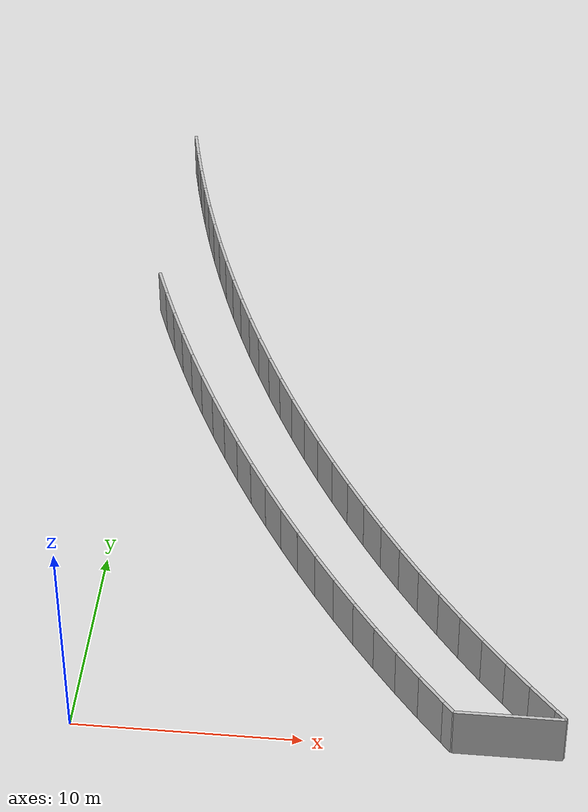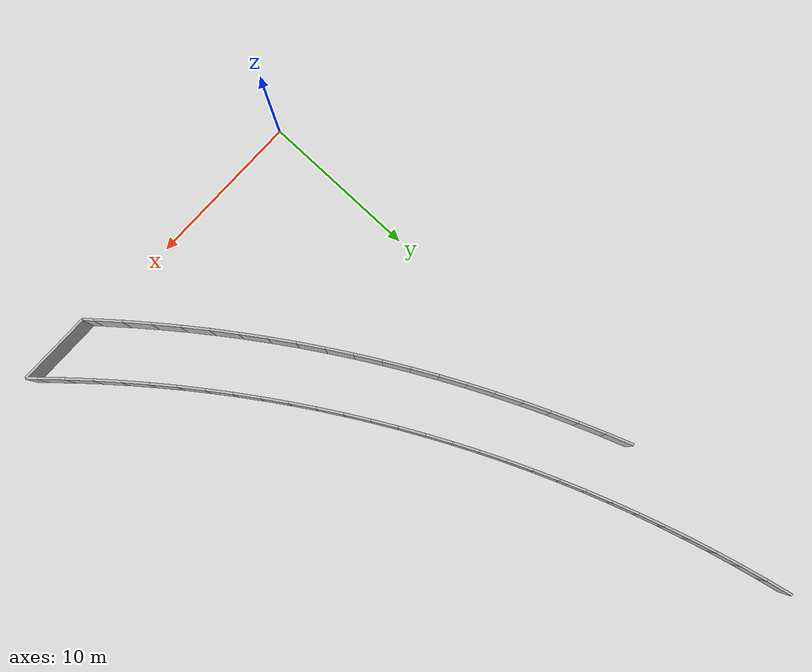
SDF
<?xml version="1.0" ?>
<sdf version="1.6">
  <model name="sps_0600">
    <pose frame="">0 0 0 0 -0 0</pose>
    <static>1</static>
    <self_collide>0</self_collide>
    <allow_auto_disable>0</allow_auto_disable>
    <link name="Wall1586">
      <kinematic>0</kinematic>
      <gravity>1</gravity>
      <self_collide>0</self_collide>
      <collision name="collision">
        <geometry>
          <box>
            <size>0.649497 0.15 2.5</size>
          </box>
        </geometry>
        <pose frame="">0 0 0 0 -0 0</pose>
      </collision>
      <visual name="visual">
        <geometry>
          <box>
            <size>0.649497 0.15 2.5</size>
          </box>
        </geometry>
        <pose frame="">0 0 0 0 -0 0</pose>
        <cast_shadows>1</cast_shadows>
        <transparency>0.0</transparency>
      </visual>
      <pose frame="">16.0914 0.245552 1.25 0 -0 2.28422</pose>
    </link>
    <link name="Wall1587">
      <kinematic>0</kinematic>
      <gravity>1</gravity>
      <self_collide>0</self_collide>
      <collision name="collision">
        <geometry>
          <box>
            <size>1.70127 0.15 2.5</size>
          </box>
        </geometry>
        <pose frame="">0 0 0 0 -0 0</pose>
      </collision>
      <visual name="visual">
        <geometry>
          <box>
            <size>1.70127 0.15 2.5</size>
          </box>
        </geometry>
        <pose frame="">0 0 0 0 -0 0</pose>
        <cast_shadows>1</cast_shadows>
        <transparency>0.0</transparency>
      </visual>
      <pose frame="">15.3346 1.14479 1.25 0 -0 2.26515</pose>
    </link>
    <link name="Wall1588">
      <kinematic>0</kinematic>
      <gravity>1</gravity>
      <self_collide>0</self_collide>
      <collision name="collision">
        <geometry>
          <box>
            <size>1.70131 0.15 2.5</size>
          </box>
        </geometry>
        <pose frame="">0 0 0 0 -0 0</pose>
      </collision>
      <visual name="visual">
        <geometry>
          <box>
            <size>1.70131 0.15 2.5</size>
          </box>
        </geometry>
        <pose frame="">0 0 0 0 -0 0</pose>
        <cast_shadows>1</cast_shadows>
        <transparency>0.0</transparency>
      </visual>
      <pose frame="">14.2585 2.46248 1.25 0 -0 2.246</pose>
    </link>
    <link name="Wall1589">
      <kinematic>0</kinematic>
      <gravity>1</gravity>
      <self_collide>0</self_collide>
      <collision name="collision">
        <geometry>
          <box>
            <size>1.7014 0.15 2.5</size>
          </box>
        </geometry>
        <pose frame="">0 0 0 0 -0 0</pose>
      </collision>
      <visual name="visual">
        <geometry>
          <box>
            <size>1.7014 0.15 2.5</size>
          </box>
        </geometry>
        <pose frame="">0 0 0 0 -0 0</pose>
        <cast_shadows>1</cast_shadows>
        <transparency>0.0</transparency>
      </visual>
      <pose frame="">13.208 3.80067 1.25 0 -0 2.22667</pose>
    </link>
    <link name="Wall1590">
      <kinematic>0</kinematic>
      <gravity>1</gravity>
      <self_collide>0</self_collide>
      <collision name="collision">
        <geometry>
          <box>
            <size>1.70123 0.15 2.5</size>
          </box>
        </geometry>
        <pose frame="">0 0 0 0 -0 0</pose>
      </collision>
      <visual name="visual">
        <geometry>
          <box>
            <size>1.70123 0.15 2.5</size>
          </box>
        </geometry>
        <pose frame="">0 0 0 0 -0 0</pose>
        <cast_shadows>1</cast_shadows>
        <transparency>0.0</transparency>
      </visual>
      <pose frame="">12.1834 5.15877 1.25 0 -0 2.2076</pose>
    </link>
    <link name="Wall1591">
      <kinematic>0</kinematic>
      <gravity>1</gravity>
      <self_collide>0</self_collide>
      <collision name="collision">
        <geometry>
          <box>
            <size>1.70119 0.15 2.5</size>
          </box>
        </geometry>
        <pose frame="">0 0 0 0 -0 0</pose>
      </collision>
      <visual name="visual">
        <geometry>
          <box>
            <size>1.70119 0.15 2.5</size>
          </box>
        </geometry>
        <pose frame="">0 0 0 0 -0 0</pose>
        <cast_shadows>1</cast_shadows>
        <transparency>0.0</transparency>
      </visual>
      <pose frame="">11.1851 6.53618 1.25 0 -0 2.1883</pose>
    </link>
    <link name="Wall1592">
      <kinematic>0</kinematic>
      <gravity>1</gravity>
      <self_collide>0</self_collide>
      <collision name="collision">
        <geometry>
          <box>
            <size>1.70131 0.15 2.5</size>
          </box>
        </geometry>
        <pose frame="">0 0 0 0 -0 0</pose>
      </collision>
      <visual name="visual">
        <geometry>
          <box>
            <size>1.70131 0.15 2.5</size>
          </box>
        </geometry>
        <pose frame="">0 0 0 0 -0 0</pose>
        <cast_shadows>1</cast_shadows>
        <transparency>0.0</transparency>
      </visual>
      <pose frame="">10.2136 7.9326 1.25 0 -0 2.16906</pose>
    </link>
    <link name="Wall1593">
      <kinematic>0</kinematic>
      <gravity>1</gravity>
      <self_collide>0</self_collide>
      <collision name="collision">
        <geometry>
          <box>
            <size>1.70126 0.15 2.5</size>
          </box>
        </geometry>
        <pose frame="">0 0 0 0 -0 0</pose>
      </collision>
      <visual name="visual">
        <geometry>
          <box>
            <size>1.70126 0.15 2.5</size>
          </box>
        </geometry>
        <pose frame="">0 0 0 0 -0 0</pose>
        <cast_shadows>1</cast_shadows>
        <transparency>0.0</transparency>
      </visual>
      <pose frame="">9.26885 9.3474 1.25 0 -0 2.15001</pose>
    </link>
    <link name="Wall1594">
      <kinematic>0</kinematic>
      <gravity>1</gravity>
      <self_collide>0</self_collide>
      <collision name="collision">
        <geometry>
          <box>
            <size>1.70135 0.15 2.5</size>
          </box>
        </geometry>
        <pose frame="">0 0 0 0 -0 0</pose>
      </collision>
      <visual name="visual">
        <geometry>
          <box>
            <size>1.70135 0.15 2.5</size>
          </box>
        </geometry>
        <pose frame="">0 0 0 0 -0 0</pose>
        <cast_shadows>1</cast_shadows>
        <transparency>0.0</transparency>
      </visual>
      <pose frame="">8.35146 10.7801 1.25 0 -0 2.13068</pose>
    </link>
    <link name="Wall1595">
      <kinematic>0</kinematic>
      <gravity>1</gravity>
      <self_collide>0</self_collide>
      <collision name="collision">
        <geometry>
          <box>
            <size>1.70138 0.15 2.5</size>
          </box>
        </geometry>
        <pose frame="">0 0 0 0 -0 0</pose>
      </collision>
      <visual name="visual">
        <geometry>
          <box>
            <size>1.70138 0.15 2.5</size>
          </box>
        </geometry>
        <pose frame="">0 0 0 0 -0 0</pose>
        <cast_shadows>1</cast_shadows>
        <transparency>0.0</transparency>
      </visual>
      <pose frame="">7.46175 12.2302 1.25 0 -0 2.11156</pose>
    </link>
    <link name="Wall1596">
      <kinematic>0</kinematic>
      <gravity>1</gravity>
      <self_collide>0</self_collide>
      <collision name="collision">
        <geometry>
          <box>
            <size>1.70138 0.15 2.5</size>
          </box>
        </geometry>
        <pose frame="">0 0 0 0 -0 0</pose>
      </collision>
      <visual name="visual">
        <geometry>
          <box>
            <size>1.70138 0.15 2.5</size>
          </box>
        </geometry>
        <pose frame="">0 0 0 0 -0 0</pose>
        <cast_shadows>1</cast_shadows>
        <transparency>0.0</transparency>
      </visual>
      <pose frame="">6.60003 13.6971 1.25 0 -0 2.0923</pose>
    </link>
    <link name="Wall1597">
      <kinematic>0</kinematic>
      <gravity>1</gravity>
      <self_collide>0</self_collide>
      <collision name="collision">
        <geometry>
          <box>
            <size>1.70117 0.15 2.5</size>
          </box>
        </geometry>
        <pose frame="">0 0 0 0 -0 0</pose>
      </collision>
      <visual name="visual">
        <geometry>
          <box>
            <size>1.70117 0.15 2.5</size>
          </box>
        </geometry>
        <pose frame="">0 0 0 0 -0 0</pose>
        <cast_shadows>1</cast_shadows>
        <transparency>0.0</transparency>
      </visual>
      <pose frame="">5.76665 15.1802 1.25 0 -0 2.07319</pose>
    </link>
    <link name="Wall1598">
      <kinematic>0</kinematic>
      <gravity>1</gravity>
      <self_collide>0</self_collide>
      <collision name="collision">
        <geometry>
          <box>
            <size>1.70126 0.15 2.5</size>
          </box>
        </geometry>
        <pose frame="">0 0 0 0 -0 0</pose>
      </collision>
      <visual name="visual">
        <geometry>
          <box>
            <size>1.70126 0.15 2.5</size>
          </box>
        </geometry>
        <pose frame="">0 0 0 0 -0 0</pose>
        <cast_shadows>1</cast_shadows>
        <transparency>0.0</transparency>
      </visual>
      <pose frame="">4.96197 16.679 1.25 0 -0 2.05386</pose>
    </link>
    <link name="Wall1599">
      <kinematic>0</kinematic>
      <gravity>1</gravity>
      <self_collide>0</self_collide>
      <collision name="collision">
        <geometry>
          <box>
            <size>1.70148 0.15 2.5</size>
          </box>
        </geometry>
        <pose frame="">0 0 0 0 -0 0</pose>
      </collision>
      <visual name="visual">
        <geometry>
          <box>
            <size>1.70148 0.15 2.5</size>
          </box>
        </geometry>
        <pose frame="">0 0 0 0 -0 0</pose>
        <cast_shadows>1</cast_shadows>
        <transparency>0.0</transparency>
      </visual>
      <pose frame="">4.18615 18.1931 1.25 0 -0 2.03476</pose>
    </link>
    <link name="Wall1600">
      <kinematic>0</kinematic>
      <gravity>1</gravity>
      <self_collide>0</self_collide>
      <collision name="collision">
        <geometry>
          <box>
            <size>1.70127 0.15 2.5</size>
          </box>
        </geometry>
        <pose frame="">0 0 0 0 -0 0</pose>
      </collision>
      <visual name="visual">
        <geometry>
          <box>
            <size>1.70127 0.15 2.5</size>
          </box>
        </geometry>
        <pose frame="">0 0 0 0 -0 0</pose>
        <cast_shadows>1</cast_shadows>
        <transparency>0.0</transparency>
      </visual>
      <pose frame="">3.43954 19.7218 1.25 0 -0 2.01546</pose>
    </link>
    <link name="Wall1601">
      <kinematic>0</kinematic>
      <gravity>1</gravity>
      <self_collide>0</self_collide>
      <collision name="collision">
        <geometry>
          <box>
            <size>1.70138 0.15 2.5</size>
          </box>
        </geometry>
        <pose frame="">0 0 0 0 -0 0</pose>
      </collision>
      <visual name="visual">
        <geometry>
          <box>
            <size>1.70138 0.15 2.5</size>
          </box>
        </geometry>
        <pose frame="">0 0 0 0 -0 0</pose>
        <cast_shadows>1</cast_shadows>
        <transparency>0.0</transparency>
      </visual>
      <pose frame="">2.72243 21.2645 1.25 0 -0 1.99636</pose>
    </link>
    <link name="Wall1602">
      <kinematic>0</kinematic>
      <gravity>1</gravity>
      <self_collide>0</self_collide>
      <collision name="collision">
        <geometry>
          <box>
            <size>1.70125 0.15 2.5</size>
          </box>
        </geometry>
        <pose frame="">0 0 0 0 -0 0</pose>
      </collision>
      <visual name="visual">
        <geometry>
          <box>
            <size>1.70125 0.15 2.5</size>
          </box>
        </geometry>
        <pose frame="">0 0 0 0 -0 0</pose>
        <cast_shadows>1</cast_shadows>
        <transparency>0.0</transparency>
      </visual>
      <pose frame="">2.03506 22.8207 1.25 0 -0 1.9771</pose>
    </link>
    <link name="Wall1603">
      <kinematic>0</kinematic>
      <gravity>1</gravity>
      <self_collide>0</self_collide>
      <collision name="collision">
        <geometry>
          <box>
            <size>1.70114 0.15 2.5</size>
          </box>
        </geometry>
        <pose frame="">0 0 0 0 -0 0</pose>
      </collision>
      <visual name="visual">
        <geometry>
          <box>
            <size>1.70114 0.15 2.5</size>
          </box>
        </geometry>
        <pose frame="">0 0 0 0 -0 0</pose>
        <cast_shadows>1</cast_shadows>
        <transparency>0.0</transparency>
      </visual>
      <pose frame="">1.37777 24.3897 1.25 0 -0 1.95791</pose>
    </link>
    <link name="Wall1604">
      <kinematic>0</kinematic>
      <gravity>1</gravity>
      <self_collide>0</self_collide>
      <collision name="collision">
        <geometry>
          <box>
            <size>1.70123 0.15 2.5</size>
          </box>
        </geometry>
        <pose frame="">0 0 0 0 -0 0</pose>
      </collision>
      <visual name="visual">
        <geometry>
          <box>
            <size>1.70123 0.15 2.5</size>
          </box>
        </geometry>
        <pose frame="">0 0 0 0 -0 0</pose>
        <cast_shadows>1</cast_shadows>
        <transparency>0.0</transparency>
      </visual>
      <pose frame="">0.750663 25.971 1.25 0 -0 1.93878</pose>
    </link>
    <link name="Wall1605">
      <kinematic>0</kinematic>
      <gravity>1</gravity>
      <self_collide>0</self_collide>
      <collision name="collision">
        <geometry>
          <box>
            <size>1.70125 0.15 2.5</size>
          </box>
        </geometry>
        <pose frame="">0 0 0 0 -0 0</pose>
      </collision>
      <visual name="visual">
        <geometry>
          <box>
            <size>1.70125 0.15 2.5</size>
          </box>
        </geometry>
        <pose frame="">0 0 0 0 -0 0</pose>
        <cast_shadows>1</cast_shadows>
        <transparency>0.0</transparency>
      </visual>
      <pose frame="">0.153953 27.5641 1.25 0 -0 1.91959</pose>
    </link>
    <link name="Wall1823">
      <kinematic>0</kinematic>
      <gravity>1</gravity>
      <self_collide>0</self_collide>
      <collision name="collision">
        <geometry>
          <box>
            <size>1.62885 0.15 2.5</size>
          </box>
        </geometry>
        <pose frame="">0 0 0 0 -0 0</pose>
      </collision>
      <visual name="visual">
        <geometry>
          <box>
            <size>1.62885 0.15 2.5</size>
          </box>
        </geometry>
        <pose frame="">0 0 0 0 -0 0</pose>
        <cast_shadows>1</cast_shadows>
        <transparency>0.0</transparency>
      </visual>
      <pose frame="">0.246543 39.8385 1.25 0 0 -1.35762</pose>
    </link>
    <link name="Wall1824">
      <kinematic>0</kinematic>
      <gravity>1</gravity>
      <self_collide>0</self_collide>
      <collision name="collision">
        <geometry>
          <box>
            <size>1.62896 0.15 2.5</size>
          </box>
        </geometry>
        <pose frame="">0 0 0 0 -0 0</pose>
      </collision>
      <visual name="visual">
        <geometry>
          <box>
            <size>1.62896 0.15 2.5</size>
          </box>
        </geometry>
        <pose frame="">0 0 0 0 -0 0</pose>
        <cast_shadows>1</cast_shadows>
        <transparency>0.0</transparency>
      </visual>
      <pose frame="">0.606345 38.2499 1.25 0 0 -1.3385</pose>
    </link>
    <link name="Wall1825">
      <kinematic>0</kinematic>
      <gravity>1</gravity>
      <self_collide>0</self_collide>
      <collision name="collision">
        <geometry>
          <box>
            <size>1.62879 0.15 2.5</size>
          </box>
        </geometry>
        <pose frame="">0 0 0 0 -0 0</pose>
      </collision>
      <visual name="visual">
        <geometry>
          <box>
            <size>1.62879 0.15 2.5</size>
          </box>
        </geometry>
        <pose frame="">0 0 0 0 -0 0</pose>
        <cast_shadows>1</cast_shadows>
        <transparency>0.0</transparency>
      </visual>
      <pose frame="">0.996452 36.6685 1.25 0 0 -1.31937</pose>
    </link>
    <link name="Wall1826">
      <kinematic>0</kinematic>
      <gravity>1</gravity>
      <self_collide>0</self_collide>
      <collision name="collision">
        <geometry>
          <box>
            <size>1.62885 0.15 2.5</size>
          </box>
        </geometry>
        <pose frame="">0 0 0 0 -0 0</pose>
      </collision>
      <visual name="visual">
        <geometry>
          <box>
            <size>1.62885 0.15 2.5</size>
          </box>
        </geometry>
        <pose frame="">0 0 0 0 -0 0</pose>
        <cast_shadows>1</cast_shadows>
        <transparency>0.0</transparency>
      </visual>
      <pose frame="">1.41665 35.0949 1.25 0 0 -1.30034</pose>
    </link>
    <link name="Wall1827">
      <kinematic>0</kinematic>
      <gravity>1</gravity>
      <self_collide>0</self_collide>
      <collision name="collision">
        <geometry>
          <box>
            <size>1.62905 0.15 2.5</size>
          </box>
        </geometry>
        <pose frame="">0 0 0 0 -0 0</pose>
      </collision>
      <visual name="visual">
        <geometry>
          <box>
            <size>1.62905 0.15 2.5</size>
          </box>
        </geometry>
        <pose frame="">0 0 0 0 -0 0</pose>
        <cast_shadows>1</cast_shadows>
        <transparency>0.0</transparency>
      </visual>
      <pose frame="">1.86694 33.5295 1.25 0 0 -1.28108</pose>
    </link>
    <link name="Wall1828">
      <kinematic>0</kinematic>
      <gravity>1</gravity>
      <self_collide>0</self_collide>
      <collision name="collision">
        <geometry>
          <box>
            <size>1.62885 0.15 2.5</size>
          </box>
        </geometry>
        <pose frame="">0 0 0 0 -0 0</pose>
      </collision>
      <visual name="visual">
        <geometry>
          <box>
            <size>1.62885 0.15 2.5</size>
          </box>
        </geometry>
        <pose frame="">0 0 0 0 -0 0</pose>
        <cast_shadows>1</cast_shadows>
        <transparency>0.0</transparency>
      </visual>
      <pose frame="">2.34713 31.973 1.25 0 0 -1.26202</pose>
    </link>
    <link name="Wall1829">
      <kinematic>0</kinematic>
      <gravity>1</gravity>
      <self_collide>0</self_collide>
      <collision name="collision">
        <geometry>
          <box>
            <size>1.62904 0.15 2.5</size>
          </box>
        </geometry>
        <pose frame="">0 0 0 0 -0 0</pose>
      </collision>
      <visual name="visual">
        <geometry>
          <box>
            <size>1.62904 0.15 2.5</size>
          </box>
        </geometry>
        <pose frame="">0 0 0 0 -0 0</pose>
        <cast_shadows>1</cast_shadows>
        <transparency>0.0</transparency>
      </visual>
      <pose frame="">2.85705 30.426 1.25 0 0 -1.24277</pose>
    </link>
    <link name="Wall1830">
      <kinematic>0</kinematic>
      <gravity>1</gravity>
      <self_collide>0</self_collide>
      <collision name="collision">
        <geometry>
          <box>
            <size>1.62897 0.15 2.5</size>
          </box>
        </geometry>
        <pose frame="">0 0 0 0 -0 0</pose>
      </collision>
      <visual name="visual">
        <geometry>
          <box>
            <size>1.62897 0.15 2.5</size>
          </box>
        </geometry>
        <pose frame="">0 0 0 0 -0 0</pose>
        <cast_shadows>1</cast_shadows>
        <transparency>0.0</transparency>
      </visual>
      <pose frame="">3.39657 28.889 1.25 0 0 -1.22365</pose>
    </link>
    <link name="Wall1831">
      <kinematic>0</kinematic>
      <gravity>1</gravity>
      <self_collide>0</self_collide>
      <collision name="collision">
        <geometry>
          <box>
            <size>1.62886 0.15 2.5</size>
          </box>
        </geometry>
        <pose frame="">0 0 0 0 -0 0</pose>
      </collision>
      <visual name="visual">
        <geometry>
          <box>
            <size>1.62886 0.15 2.5</size>
          </box>
        </geometry>
        <pose frame="">0 0 0 0 -0 0</pose>
        <cast_shadows>1</cast_shadows>
        <transparency>0.0</transparency>
      </visual>
      <pose frame="">3.96535 27.3627 1.25 0 0 -1.20451</pose>
    </link>
    <link name="Wall1832">
      <kinematic>0</kinematic>
      <gravity>1</gravity>
      <self_collide>0</self_collide>
      <collision name="collision">
        <geometry>
          <box>
            <size>1.62884 0.15 2.5</size>
          </box>
        </geometry>
        <pose frame="">0 0 0 0 -0 0</pose>
      </collision>
      <visual name="visual">
        <geometry>
          <box>
            <size>1.62884 0.15 2.5</size>
          </box>
        </geometry>
        <pose frame="">0 0 0 0 -0 0</pose>
        <cast_shadows>1</cast_shadows>
        <transparency>0.0</transparency>
      </visual>
      <pose frame="">4.56316 25.8476 1.25 0 0 -1.18545</pose>
    </link>
    <link name="Wall1833">
      <kinematic>0</kinematic>
      <gravity>1</gravity>
      <self_collide>0</self_collide>
      <collision name="collision">
        <geometry>
          <box>
            <size>1.62893 0.15 2.5</size>
          </box>
        </geometry>
        <pose frame="">0 0 0 0 -0 0</pose>
      </collision>
      <visual name="visual">
        <geometry>
          <box>
            <size>1.62893 0.15 2.5</size>
          </box>
        </geometry>
        <pose frame="">0 0 0 0 -0 0</pose>
        <cast_shadows>1</cast_shadows>
        <transparency>0.0</transparency>
      </visual>
      <pose frame="">5.18987 24.3442 1.25 0 0 -1.16623</pose>
    </link>
    <link name="Wall1834">
      <kinematic>0</kinematic>
      <gravity>1</gravity>
      <self_collide>0</self_collide>
      <collision name="collision">
        <geometry>
          <box>
            <size>1.62898 0.15 2.5</size>
          </box>
        </geometry>
        <pose frame="">0 0 0 0 -0 0</pose>
      </collision>
      <visual name="visual">
        <geometry>
          <box>
            <size>1.62898 0.15 2.5</size>
          </box>
        </geometry>
        <pose frame="">0 0 0 0 -0 0</pose>
        <cast_shadows>1</cast_shadows>
        <transparency>0.0</transparency>
      </visual>
      <pose frame="">5.84527 22.853 1.25 0 0 -1.14717</pose>
    </link>
    <link name="Wall1835">
      <kinematic>0</kinematic>
      <gravity>1</gravity>
      <self_collide>0</self_collide>
      <collision name="collision">
        <geometry>
          <box>
            <size>1.62893 0.15 2.5</size>
          </box>
        </geometry>
        <pose frame="">0 0 0 0 -0 0</pose>
      </collision>
      <visual name="visual">
        <geometry>
          <box>
            <size>1.62893 0.15 2.5</size>
          </box>
        </geometry>
        <pose frame="">0 0 0 0 -0 0</pose>
        <cast_shadows>1</cast_shadows>
        <transparency>0.0</transparency>
      </visual>
      <pose frame="">6.52907 21.3746 1.25 0 0 -1.12796</pose>
    </link>
    <link name="Wall1836">
      <kinematic>0</kinematic>
      <gravity>1</gravity>
      <self_collide>0</self_collide>
      <collision name="collision">
        <geometry>
          <box>
            <size>1.6289 0.15 2.5</size>
          </box>
        </geometry>
        <pose frame="">0 0 0 0 -0 0</pose>
      </collision>
      <visual name="visual">
        <geometry>
          <box>
            <size>1.6289 0.15 2.5</size>
          </box>
        </geometry>
        <pose frame="">0 0 0 0 -0 0</pose>
        <cast_shadows>1</cast_shadows>
        <transparency>0.0</transparency>
      </visual>
      <pose frame="">7.24105 19.9096 1.25 0 0 -1.10887</pose>
    </link>
    <link name="Wall1837">
      <kinematic>0</kinematic>
      <gravity>1</gravity>
      <self_collide>0</self_collide>
      <collision name="collision">
        <geometry>
          <box>
            <size>1.62896 0.15 2.5</size>
          </box>
        </geometry>
        <pose frame="">0 0 0 0 -0 0</pose>
      </collision>
      <visual name="visual">
        <geometry>
          <box>
            <size>1.62896 0.15 2.5</size>
          </box>
        </geometry>
        <pose frame="">0 0 0 0 -0 0</pose>
        <cast_shadows>1</cast_shadows>
        <transparency>0.0</transparency>
      </visual>
      <pose frame="">7.98095 18.4585 1.25 0 0 -1.08967</pose>
    </link>
    <link name="Wall1838">
      <kinematic>0</kinematic>
      <gravity>1</gravity>
      <self_collide>0</self_collide>
      <collision name="collision">
        <geometry>
          <box>
            <size>1.62901 0.15 2.5</size>
          </box>
        </geometry>
        <pose frame="">0 0 0 0 -0 0</pose>
      </collision>
      <visual name="visual">
        <geometry>
          <box>
            <size>1.62901 0.15 2.5</size>
          </box>
        </geometry>
        <pose frame="">0 0 0 0 -0 0</pose>
        <cast_shadows>1</cast_shadows>
        <transparency>0.0</transparency>
      </visual>
      <pose frame="">8.74856 17.0218 1.25 0 0 -1.07053</pose>
    </link>
    <link name="Wall1839">
      <kinematic>0</kinematic>
      <gravity>1</gravity>
      <self_collide>0</self_collide>
      <collision name="collision">
        <geometry>
          <box>
            <size>1.62887 0.15 2.5</size>
          </box>
        </geometry>
        <pose frame="">0 0 0 0 -0 0</pose>
      </collision>
      <visual name="visual">
        <geometry>
          <box>
            <size>1.62887 0.15 2.5</size>
          </box>
        </geometry>
        <pose frame="">0 0 0 0 -0 0</pose>
        <cast_shadows>1</cast_shadows>
        <transparency>0.0</transparency>
      </visual>
      <pose frame="">9.54354 15.6001 1.25 0 0 -1.05133</pose>
    </link>
    <link name="Wall1840">
      <kinematic>0</kinematic>
      <gravity>1</gravity>
      <self_collide>0</self_collide>
      <collision name="collision">
        <geometry>
          <box>
            <size>1.62897 0.15 2.5</size>
          </box>
        </geometry>
        <pose frame="">0 0 0 0 -0 0</pose>
      </collision>
      <visual name="visual">
        <geometry>
          <box>
            <size>1.62897 0.15 2.5</size>
          </box>
        </geometry>
        <pose frame="">0 0 0 0 -0 0</pose>
        <cast_shadows>1</cast_shadows>
        <transparency>0.0</transparency>
      </visual>
      <pose frame="">10.3654 14.1938 1.25 0 0 -1.03245</pose>
    </link>
    <link name="Wall1841">
      <kinematic>0</kinematic>
      <gravity>1</gravity>
      <self_collide>0</self_collide>
      <collision name="collision">
        <geometry>
          <box>
            <size>1.62881 0.15 2.5</size>
          </box>
        </geometry>
        <pose frame="">0 0 0 0 -0 0</pose>
      </collision>
      <visual name="visual">
        <geometry>
          <box>
            <size>1.62881 0.15 2.5</size>
          </box>
        </geometry>
        <pose frame="">0 0 0 0 -0 0</pose>
        <cast_shadows>1</cast_shadows>
        <transparency>0.0</transparency>
      </visual>
      <pose frame="">11.214 12.8035 1.25 0 0 -1.01311</pose>
    </link>
    <link name="Wall1842">
      <kinematic>0</kinematic>
      <gravity>1</gravity>
      <self_collide>0</self_collide>
      <collision name="collision">
        <geometry>
          <box>
            <size>1.62901 0.15 2.5</size>
          </box>
        </geometry>
        <pose frame="">0 0 0 0 -0 0</pose>
      </collision>
      <visual name="visual">
        <geometry>
          <box>
            <size>1.62901 0.15 2.5</size>
          </box>
        </geometry>
        <pose frame="">0 0 0 0 -0 0</pose>
        <cast_shadows>1</cast_shadows>
        <transparency>0.0</transparency>
      </visual>
      <pose frame="">12.0893 11.4298 1.25 0 0 -0.993955</pose>
    </link>
    <link name="Wall1843">
      <kinematic>0</kinematic>
      <gravity>1</gravity>
      <self_collide>0</self_collide>
      <collision name="collision">
        <geometry>
          <box>
            <size>1.62892 0.15 2.5</size>
          </box>
        </geometry>
        <pose frame="">0 0 0 0 -0 0</pose>
      </collision>
      <visual name="visual">
        <geometry>
          <box>
            <size>1.62892 0.15 2.5</size>
          </box>
        </geometry>
        <pose frame="">0 0 0 0 -0 0</pose>
        <cast_shadows>1</cast_shadows>
        <transparency>0.0</transparency>
      </visual>
      <pose frame="">12.9906 10.073 1.25 0 0 -0.974937</pose>
    </link>
    <link name="Wall1844">
      <kinematic>0</kinematic>
      <gravity>1</gravity>
      <self_collide>0</self_collide>
      <collision name="collision">
        <geometry>
          <box>
            <size>1.62881 0.15 2.5</size>
          </box>
        </geometry>
        <pose frame="">0 0 0 0 -0 0</pose>
      </collision>
      <visual name="visual">
        <geometry>
          <box>
            <size>1.62881 0.15 2.5</size>
          </box>
        </geometry>
        <pose frame="">0 0 0 0 -0 0</pose>
        <cast_shadows>1</cast_shadows>
        <transparency>0.0</transparency>
      </visual>
      <pose frame="">13.9177 8.73378 1.25 0 0 -0.955613</pose>
    </link>
    <link name="Wall1845">
      <kinematic>0</kinematic>
      <gravity>1</gravity>
      <self_collide>0</self_collide>
      <collision name="collision">
        <geometry>
          <box>
            <size>1.62895 0.15 2.5</size>
          </box>
        </geometry>
        <pose frame="">0 0 0 0 -0 0</pose>
      </collision>
      <visual name="visual">
        <geometry>
          <box>
            <size>1.62895 0.15 2.5</size>
          </box>
        </geometry>
        <pose frame="">0 0 0 0 -0 0</pose>
        <cast_shadows>1</cast_shadows>
        <transparency>0.0</transparency>
      </visual>
      <pose frame="">14.8703 7.41258 1.25 0 0 -0.936595</pose>
    </link>
    <link name="Wall1846">
      <kinematic>0</kinematic>
      <gravity>1</gravity>
      <self_collide>0</self_collide>
      <collision name="collision">
        <geometry>
          <box>
            <size>1.62879 0.15 2.5</size>
          </box>
        </geometry>
        <pose frame="">0 0 0 0 -0 0</pose>
      </collision>
      <visual name="visual">
        <geometry>
          <box>
            <size>1.62879 0.15 2.5</size>
          </box>
        </geometry>
        <pose frame="">0 0 0 0 -0 0</pose>
        <cast_shadows>1</cast_shadows>
        <transparency>0.0</transparency>
      </visual>
      <pose frame="">15.8479 6.10979 1.25 0 0 -0.9175</pose>
    </link>
    <link name="Wall1847">
      <kinematic>0</kinematic>
      <gravity>1</gravity>
      <self_collide>0</self_collide>
      <collision name="collision">
        <geometry>
          <box>
            <size>1.62908 0.15 2.5</size>
          </box>
        </geometry>
        <pose frame="">0 0 0 0 -0 0</pose>
      </collision>
      <visual name="visual">
        <geometry>
          <box>
            <size>1.62908 0.15 2.5</size>
          </box>
        </geometry>
        <pose frame="">0 0 0 0 -0 0</pose>
        <cast_shadows>1</cast_shadows>
        <transparency>0.0</transparency>
      </visual>
      <pose frame="">16.8502 4.82588 1.25 0 0 -0.898337</pose>
    </link>
    <link name="Wall1848">
      <kinematic>0</kinematic>
      <gravity>1</gravity>
      <self_collide>0</self_collide>
      <collision name="collision">
        <geometry>
          <box>
            <size>1.62895 0.15 2.5</size>
          </box>
        </geometry>
        <pose frame="">0 0 0 0 -0 0</pose>
      </collision>
      <visual name="visual">
        <geometry>
          <box>
            <size>1.62895 0.15 2.5</size>
          </box>
        </geometry>
        <pose frame="">0 0 0 0 -0 0</pose>
        <cast_shadows>1</cast_shadows>
        <transparency>0.0</transparency>
      </visual>
      <pose frame="">17.8771 3.56139 1.25 0 0 -0.879114</pose>
    </link>
    <link name="Wall1849">
      <kinematic>0</kinematic>
      <gravity>1</gravity>
      <self_collide>0</self_collide>
      <collision name="collision">
        <geometry>
          <box>
            <size>1.62906 0.15 2.5</size>
          </box>
        </geometry>
        <pose frame="">0 0 0 0 -0 0</pose>
      </collision>
      <visual name="visual">
        <geometry>
          <box>
            <size>1.62906 0.15 2.5</size>
          </box>
        </geometry>
        <pose frame="">0 0 0 0 -0 0</pose>
        <cast_shadows>1</cast_shadows>
        <transparency>0.0</transparency>
      </visual>
      <pose frame="">18.928 2.31679 1.25 0 0 -0.860045</pose>
    </link>
    <link name="Wall1850">
      <kinematic>0</kinematic>
      <gravity>1</gravity>
      <self_collide>0</self_collide>
      <collision name="collision">
        <geometry>
          <box>
            <size>1.62872 0.15 2.5</size>
          </box>
        </geometry>
        <pose frame="">0 0 0 0 -0 0</pose>
      </collision>
      <visual name="visual">
        <geometry>
          <box>
            <size>1.62872 0.15 2.5</size>
          </box>
        </geometry>
        <pose frame="">0 0 0 0 -0 0</pose>
        <cast_shadows>1</cast_shadows>
        <transparency>0.0</transparency>
      </visual>
      <pose frame="">20.0024 1.09257 1.25 0 0 -0.840914</pose>
    </link>
    <link name="Wall1851">
      <kinematic>0</kinematic>
      <gravity>1</gravity>
      <self_collide>0</self_collide>
      <collision name="collision">
        <geometry>
          <box>
            <size>0.663226 0.15 2.5</size>
          </box>
        </geometry>
        <pose frame="">0 0 0 0 -0 0</pose>
      </collision>
      <visual name="visual">
        <geometry>
          <box>
            <size>0.663226 0.15 2.5</size>
          </box>
        </geometry>
        <pose frame="">0 0 0 0 -0 0</pose>
        <cast_shadows>1</cast_shadows>
        <transparency>0.0</transparency>
      </visual>
      <pose frame="">20.7713 0.242835 1.25 0 0 -0.821673</pose>
    </link>
    <link name="Wall1852">
      <kinematic>0</kinematic>
      <gravity>1</gravity>
      <self_collide>0</self_collide>
      <collision name="collision">
        <geometry>
          <box>
            <size>4.69317 0.15 2.5</size>
          </box>
        </geometry>
        <pose frame="">0 0 0 0 -0 0</pose>
      </collision>
      <visual name="visual">
        <geometry>
          <box>
            <size>4.69317 0.15 2.5</size>
          </box>
        </geometry>
        <pose frame="">0 0 0 0 -0 0</pose>
        <cast_shadows>1</cast_shadows>
        <transparency>0.0</transparency>
      </visual>
      <pose frame="">18.6505 0 1.25 0 -0 3.14159</pose>
    </link>
  </model>
</sdf>
